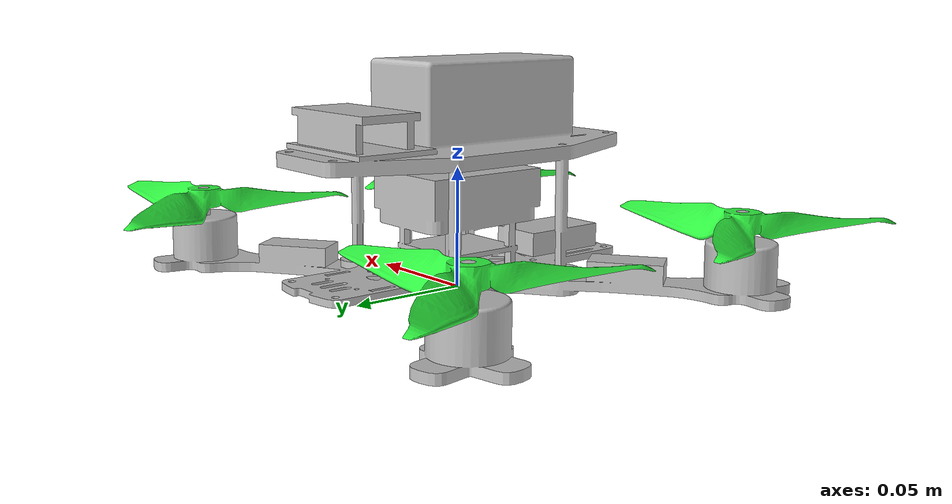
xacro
<?xml version="1.0" encoding="utf-8"?>
<robot xmlns:xacro="http://www.ros.org/wiki/xacro"  name="sourceone_drone" >

  <xacro:include filename="$(find sourceone_description)/urdf/sourceone.gazebo" />

  <link
    name="sourceone_base">
    <inertial>
      <origin
        xyz="5.5996E-06 -0.0019216 0.037452"
        rpy="0 0 0" />
      <mass
        value="0.40322" />
      <inertia
        ixx="0.00024641"
        ixy="-2.0113E-10"
        ixz="1.0745E-15"
        iyy="0.00012483"
        iyz="-6.0158E-08"
        izz="0.00034464" />
    </inertial>
    <visual>
      <origin
        xyz="0 0 0"
        rpy="0 0 0" />
      <geometry>
        <mesh
          filename="package://sourceone_description/meshes/sourceone_base.STL" />
      </geometry>
      <material
        name="">
        <color
          rgba="0.75294 0.75294 0.75294 1" />
      </material>
    </visual>
    <collision>
      <origin
        xyz="0 0 0"
        rpy="0 0 0" />
      <geometry>
        <mesh
          filename="package://sourceone_description/meshes/sourceone_base.STL" />
      </geometry>
    </collision>
  </link>
  <link
    name="FR_Prop">
    <inertial>
      <origin
        xyz="-4.6291E-06 -1.1191E-05 0.031118"
        rpy="0 0 0" />
      <mass
        value="0.003047" />
      <inertia
        ixx="1.018E-06"
        ixy="-6.5365E-10"
        ixz="-2.3152E-11"
        iyy="1.0166E-06"
        iyz="-4.2569E-11"
        izz="1.9901E-06" />
    </inertial>
    <visual>
      <origin
        xyz="0 0 0"
        rpy="0 0 0" />
      <geometry>
        <mesh
          filename="package://sourceone_description/meshes/FR_Prop.STL" />
      </geometry>
      <material
        name="">
        <color
          rgba="0.19608 1 0.26667 1" />
      </material>
    </visual>
    <collision>
      <origin
        xyz="0 0 0"
        rpy="0 0 0" />
      <geometry>
        <mesh
          filename="package://sourceone_description/meshes/FR_Prop.STL" />
      </geometry>
    </collision>
  </link>
  <joint
    name="FR_Prop_Cont"
    type="continuous">
    <origin
      xyz="0.089688 0.068739 0"
      rpy="0 0 0" />
    <parent
      link="sourceone_base" />
    <child
      link="FR_Prop" />
    <axis
      xyz="0 0 -1" />
  </joint>
  <link
    name="BR_Prop">
    <inertial>
      <origin
        xyz="1.2505E-05 -1.6499E-06 0.031118"
        rpy="0 0 0" />
      <mass
        value="0.003047" />
      <inertia
        ixx="1.0166E-06"
        ixy="5.2402E-10"
        ixz="2.9629E-11"
        iyy="1.0184E-06"
        iyz="-1.2409E-11"
        izz="1.9905E-06" />
    </inertial>
    <visual>
      <origin
        xyz="0 0 0"
        rpy="0 0 0" />
      <geometry>
        <mesh
          filename="package://sourceone_description/meshes/BR_Prop.STL" />
      </geometry>
      <material
        name="">
        <color
          rgba="0.19608 1 0.26667 1" />
      </material>
    </visual>
    <collision>
      <origin
        xyz="0 0 0"
        rpy="0 0 0" />
      <geometry>
        <mesh
          filename="package://sourceone_description/meshes/BR_Prop.STL" />
      </geometry>
    </collision>
  </link>
  <joint
    name="BR_Prop_Cont"
    type="continuous">
    <origin
      xyz="0.089688 -0.068739 0"
      rpy="0 0 0" />
    <parent
      link="sourceone_base" />
    <child
      link="BR_Prop" />
    <axis
      xyz="0 0 -1" />
  </joint>
  <link
    name="FL_Prop">
    <inertial>
      <origin
        xyz="-4.6125E-06 -1.1081E-05 0.031118"
        rpy="0 0 0" />
      <mass
        value="0.003047" />
      <inertia
        ixx="1.018E-06"
        ixy="-6.5036E-10"
        ixz="-2.3207E-11"
        iyy="1.0166E-06"
        iyz="-4.285E-11"
        izz="1.9901E-06" />
    </inertial>
    <visual>
      <origin
        xyz="0 0 0"
        rpy="0 0 0" />
      <geometry>
        <mesh
          filename="package://sourceone_description/meshes/FL_Prop.STL" />
      </geometry>
      <material
        name="">
        <color
          rgba="0.19608 1 0.26667 1" />
      </material>
    </visual>
    <collision>
      <origin
        xyz="0 0 0"
        rpy="0 0 0" />
      <geometry>
        <mesh
          filename="package://sourceone_description/meshes/FL_Prop.STL" />
      </geometry>
    </collision>
  </link>
  <joint
    name="FL_Prop_Cont"
    type="continuous">
    <origin
      xyz="-0.089688 0.068739 0"
      rpy="0 0 0" />
    <parent
      link="sourceone_base" />
    <child
      link="FL_Prop" />
    <axis
      xyz="0 0 -1" />
  </joint>
  <link
    name="BL_Prop">
    <inertial>
      <origin
        xyz="-1.8495E-06 -2.0389E-07 0.031118"
        rpy="0 0 0" />
      <mass
        value="0.0030463" />
      <inertia
        ixx="1.0169E-06"
        ixy="-1.8239E-10"
        ixz="-2.9073E-11"
        iyy="1.0166E-06"
        iyz="-4.6257E-11"
        izz="1.9891E-06" />
    </inertial>
    <visual>
      <origin
        xyz="0 0 0"
        rpy="0 0 0" />
      <geometry>
        <mesh
          filename="package://sourceone_description/meshes/BL_Prop.STL" />
      </geometry>
      <material
        name="">
        <color
          rgba="0.19608 1 0.26667 1" />
      </material>
    </visual>
    <collision>
      <origin
        xyz="0 0 0"
        rpy="0 0 0" />
      <geometry>
        <mesh
          filename="package://sourceone_description/meshes/BL_Prop.STL" />
      </geometry>
    </collision>
  </link>
  <joint
    name="BL_Prop_Cont"
    type="continuous">
    <origin
      xyz="-0.089688 -0.068739 0"
      rpy="0 0 0" />
    <parent
      link="sourceone_base" />
    <child
      link="BL_Prop" />
    <axis
      xyz="0 0 -1" />
  </joint>
</robot>
